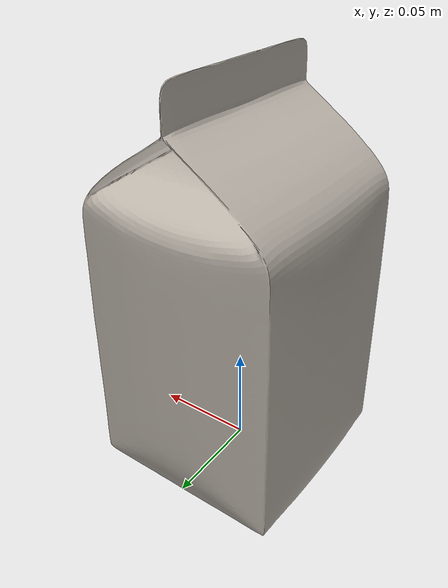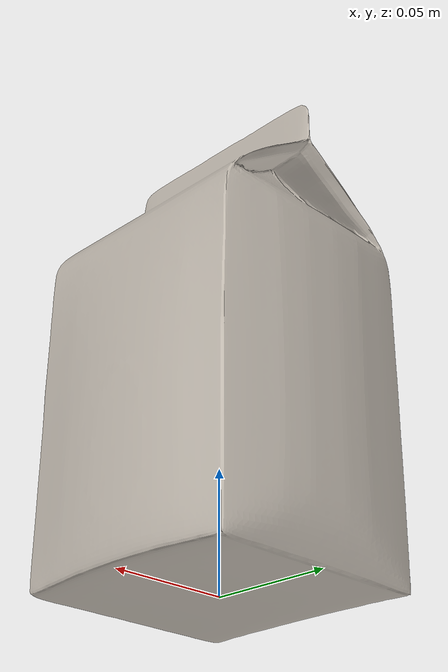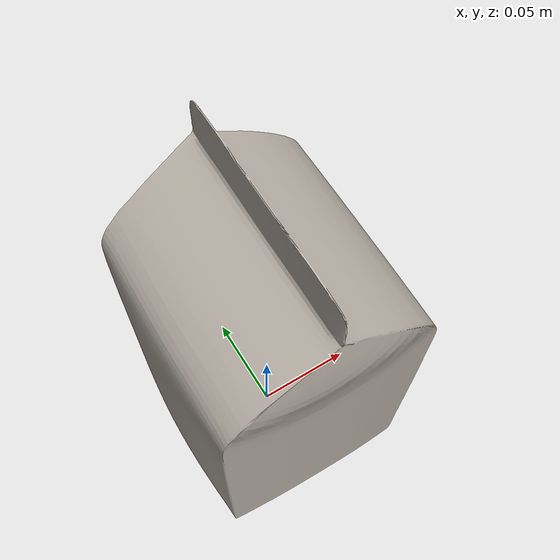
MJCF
<mujoco model="038_milk-box">
  <asset>
    <mesh name="038_milk_box_visual" file="038_milk-box_visual.obj"/>
    <mesh name="038_milk_box_collision" file="038_milk-box_collision.stl"/>
    <texture name="038_milk_box_tex" type="2d" file="038_milk-box.png"/>
    <material name="038_milk_box_mat" texture="038_milk_box_tex"/>
  </asset>
  <worldbody>
    <body name="038_milk-box" pos="0 0 0">
      <freejoint/>
      <geom type="mesh" mesh="038_milk_box_visual" material="038_milk_box_mat"
            mass="0.8473" contype="0" conaffinity="0"/>
      <geom type="mesh" mesh="038_milk_box_collision" mass="0"
            contype="1" conaffinity="1"
            friction="0.5 .005 0.01"
            rgba="0 0 0 0"/>
    </body>
  </worldbody>
</mujoco>
